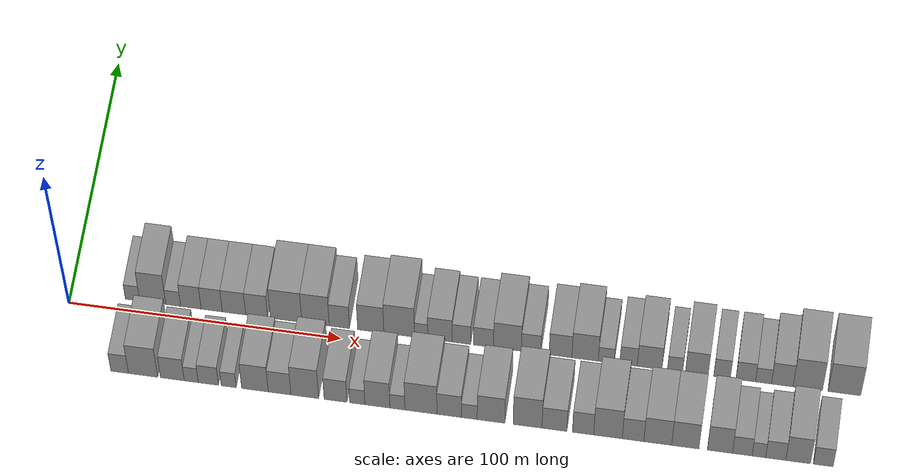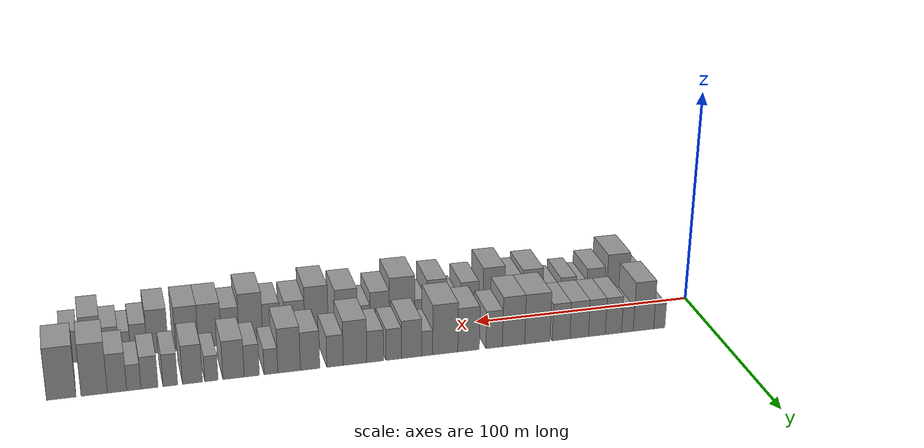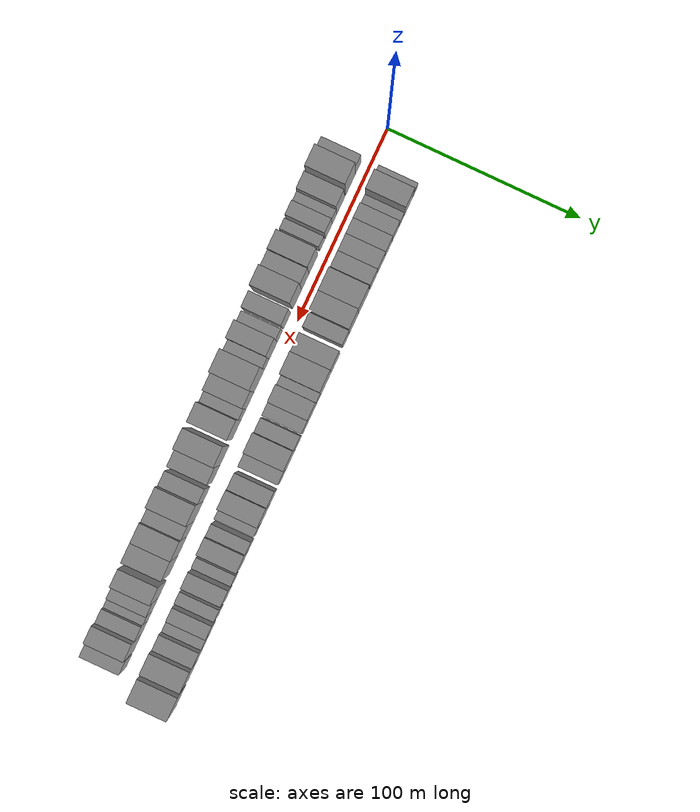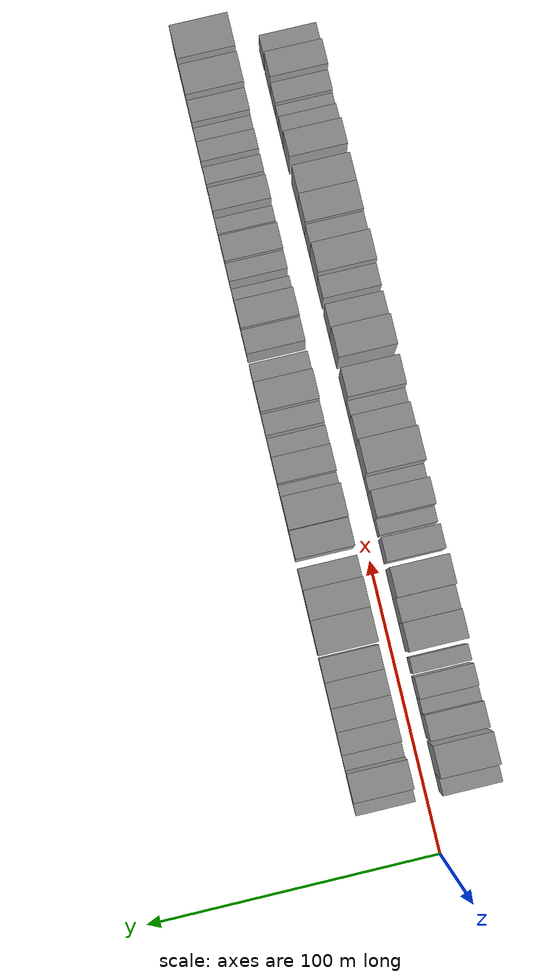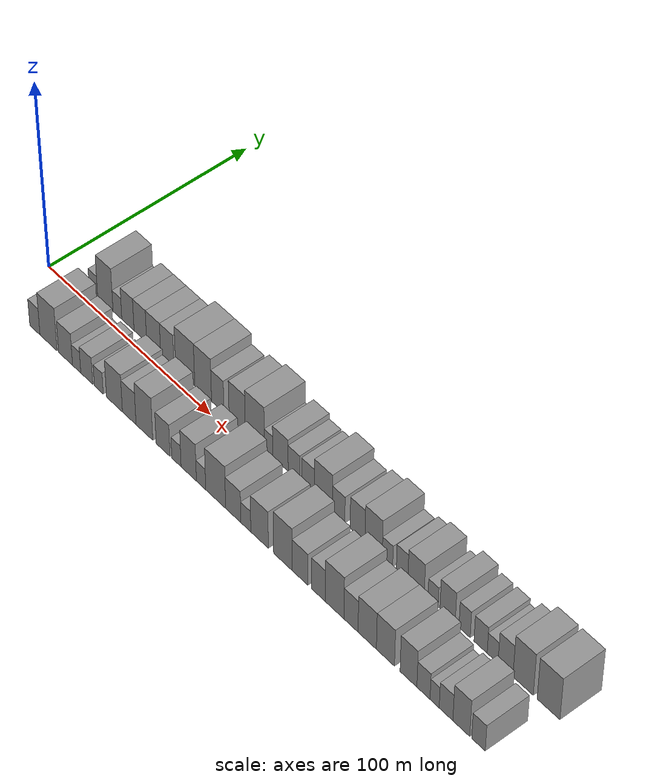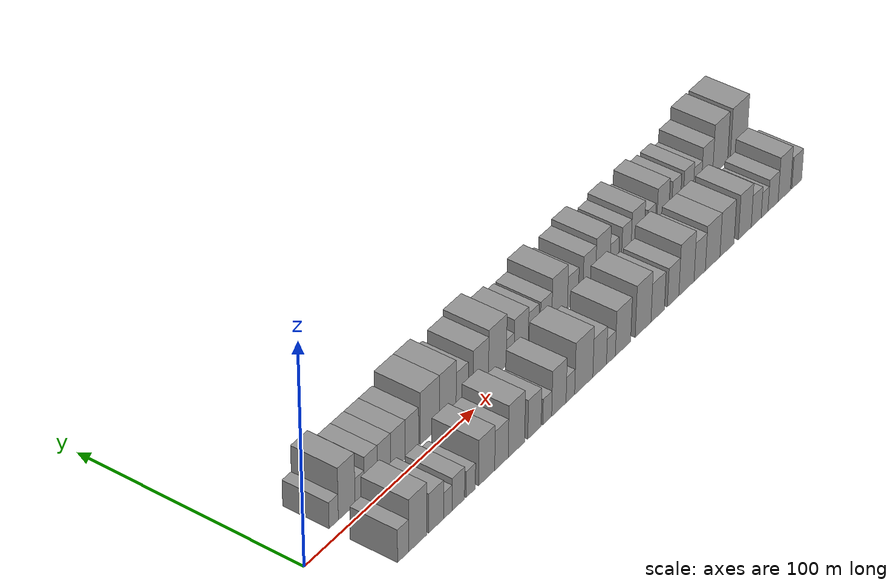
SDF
<sdf version="1.6">
 <world name="default">
  <scene>
   <sky><clouds><speed>12</speed></clouds></sky>
   <ambient>0.4 0.4 0.4 1</ambient>
   <background>0.7 0.7 0.7 1</background>
   <shadows>1</shadows>
  </scene>
  <gravity>0 0 -9.8066</gravity>
  <magnetic_field>6e-06 2.3e-05 -4.2e-05</magnetic_field>
  <physics default="0" name="default_physics" type="ode">
   <ode>
    <solver>
     <type>quick</type>
     <iters>10</iters>
     <sor>1.0</sor>
     <use_dynamic_moi_rescaling>0</use_dynamic_moi_rescaling>
    </solver>
    <constraints>
     <cfm>0</cfm>
     <erp>0.2</erp>
     <contact_max_correcting_vel>100</contact_max_correcting_vel>
     <contact_surface_layer>0.001</contact_surface_layer>
    </constraints>
   </ode>
   <max_step_size>0.004</max_step_size>
   <real_time_factor>1</real_time_factor>
   <real_time_update_rate>250</real_time_update_rate>
  </physics>
  <light name="sun" type="directional">
   <pose>0 0 10 0 0 0</pose>
   <diffuse>0.8 0.8 0.8 1</diffuse>
   <specular>0.2 0.2 0.2 1</specular>
   <attenuation>
    <range>1000</range>
    <constant>0.9</constant>
    <linear>0.01</linear>
    <quadratic>0.001</quadratic>
   </attenuation>
   <direction>-0.5 0.1 -0.9</direction>
  </light>
  <model name="building_1">
   <static>1</static>
   <pose>22.6397 14.5000 0 0.000000 0.000000 1.570796</pose>
   <link name="link">
    <pose>0 0 6.00 0 0 0</pose>
    <collision name="collision"><geometry><box><size>20.0000 5.2793 12.0000</size></box></geometry></collision>
    <visual name="visual">
     <cast_shadows>0</cast_shadows>
     <geometry><box><size>20.0000 5.2793 12.0000</size></box></geometry>
     <material>
      <script>
       <uri>model://grey_wall/materials/scripts</uri>
       <uri>model://grey_wall/materials/textures</uri>
       <name>vrc/grey_wall</name>
      </script>
     </material>
    </visual>
   </link>
  </model>
  <model name="building_2">
   <static>1</static>
   <pose>30.0902 14.5000 0 0.000000 0.000000 1.570796</pose>
   <link name="link">
    <pose>0 0 12.00 0 0 0</pose>
    <collision name="collision"><geometry><box><size>20.0000 9.6217 24.0000</size></box></geometry></collision>
    <visual name="visual">
     <cast_shadows>0</cast_shadows>
     <geometry><box><size>20.0000 9.6217 24.0000</size></box></geometry>
     <material>
      <script>
       <uri>model://grey_wall/materials/scripts</uri>
       <uri>model://grey_wall/materials/textures</uri>
       <name>vrc/grey_wall</name>
      </script>
     </material>
    </visual>
   </link>
  </model>
  <model name="building_3">
   <static>1</static>
   <pose>37.6292 14.5000 0 0.000000 0.000000 1.570796</pose>
   <link name="link">
    <pose>0 0 6.00 0 0 0</pose>
    <collision name="collision"><geometry><box><size>20.0000 5.4562 12.0000</size></box></geometry></collision>
    <visual name="visual">
     <cast_shadows>0</cast_shadows>
     <geometry><box><size>20.0000 5.4562 12.0000</size></box></geometry>
     <material>
      <script>
       <uri>model://grey_wall/materials/scripts</uri>
       <uri>model://grey_wall/materials/textures</uri>
       <name>vrc/grey_wall</name>
      </script>
     </material>
    </visual>
   </link>
  </model>
  <model name="building_4">
   <static>1</static>
   <pose>44.1460 14.5000 0 0.000000 0.000000 1.570796</pose>
   <link name="link">
    <pose>0 0 9.00 0 0 0</pose>
    <collision name="collision"><geometry><box><size>20.0000 7.5775 18.0000</size></box></geometry></collision>
    <visual name="visual">
     <cast_shadows>0</cast_shadows>
     <geometry><box><size>20.0000 7.5775 18.0000</size></box></geometry>
     <material>
      <script>
       <uri>model://grey_wall/materials/scripts</uri>
       <uri>model://grey_wall/materials/textures</uri>
       <name>vrc/grey_wall</name>
      </script>
     </material>
    </visual>
   </link>
  </model>
  <model name="building_5">
   <static>1</static>
   <pose>51.8252 14.5000 0 0.000000 0.000000 1.570796</pose>
   <link name="link">
    <pose>0 0 9.00 0 0 0</pose>
    <collision name="collision"><geometry><box><size>20.0000 7.7807 18.0000</size></box></geometry></collision>
    <visual name="visual">
     <cast_shadows>0</cast_shadows>
     <geometry><box><size>20.0000 7.7807 18.0000</size></box></geometry>
     <material>
      <script>
       <uri>model://grey_wall/materials/scripts</uri>
       <uri>model://grey_wall/materials/textures</uri>
       <name>vrc/grey_wall</name>
      </script>
     </material>
    </visual>
   </link>
  </model>
  <model name="building_6">
   <static>1</static>
   <pose>60.0201 14.5000 0 0.000000 0.000000 1.570796</pose>
   <link name="link">
    <pose>0 0 9.00 0 0 0</pose>
    <collision name="collision"><geometry><box><size>20.0000 8.6092 18.0000</size></box></geometry></collision>
    <visual name="visual">
     <cast_shadows>0</cast_shadows>
     <geometry><box><size>20.0000 8.6092 18.0000</size></box></geometry>
     <material>
      <script>
       <uri>model://grey_wall/materials/scripts</uri>
       <uri>model://grey_wall/materials/textures</uri>
       <name>vrc/grey_wall</name>
      </script>
     </material>
    </visual>
   </link>
  </model>
  <model name="building_7">
   <static>1</static>
   <pose>68.3715 14.5000 0 0.000000 0.000000 1.570796</pose>
   <link name="link">
    <pose>0 0 9.00 0 0 0</pose>
    <collision name="collision"><geometry><box><size>20.0000 8.0935 18.0000</size></box></geometry></collision>
    <visual name="visual">
     <cast_shadows>0</cast_shadows>
     <geometry><box><size>20.0000 8.0935 18.0000</size></box></geometry>
     <material>
      <script>
       <uri>model://grey_wall/materials/scripts</uri>
       <uri>model://grey_wall/materials/textures</uri>
       <name>vrc/grey_wall</name>
      </script>
     </material>
    </visual>
   </link>
  </model>
  <model name="building_8">
   <static>1</static>
   <pose>79.1934 14.5000 0 0.000000 0.000000 1.570796</pose>
   <link name="link">
    <pose>0 0 12.00 0 0 0</pose>
    <collision name="collision"><geometry><box><size>20.0000 11.5504 24.0000</size></box></geometry></collision>
    <visual name="visual">
     <cast_shadows>0</cast_shadows>
     <geometry><box><size>20.0000 11.5504 24.0000</size></box></geometry>
     <material>
      <script>
       <uri>model://grey_wall/materials/scripts</uri>
       <uri>model://grey_wall/materials/textures</uri>
       <name>vrc/grey_wall</name>
      </script>
     </material>
    </visual>
   </link>
  </model>
  <model name="building_9">
   <static>1</static>
   <pose>90.0031 14.5000 0 0.000000 0.000000 1.570796</pose>
   <link name="link">
    <pose>0 0 12.00 0 0 0</pose>
    <collision name="collision"><geometry><box><size>20.0000 10.0690 24.0000</size></box></geometry></collision>
    <visual name="visual">
     <cast_shadows>0</cast_shadows>
     <geometry><box><size>20.0000 10.0690 24.0000</size></box></geometry>
     <material>
      <script>
       <uri>model://grey_wall/materials/scripts</uri>
       <uri>model://grey_wall/materials/textures</uri>
       <name>vrc/grey_wall</name>
      </script>
     </material>
    </visual>
   </link>
  </model>
  <model name="building_10">
   <static>1</static>
   <pose>98.7398 14.5000 0 0.000000 0.000000 1.570796</pose>
   <link name="link">
    <pose>0 0 9.00 0 0 0</pose>
    <collision name="collision"><geometry><box><size>20.0000 7.4045 18.0000</size></box></geometry></collision>
    <visual name="visual">
     <cast_shadows>0</cast_shadows>
     <geometry><box><size>20.0000 7.4045 18.0000</size></box></geometry>
     <material>
      <script>
       <uri>model://grey_wall/materials/scripts</uri>
       <uri>model://grey_wall/materials/textures</uri>
       <name>vrc/grey_wall</name>
      </script>
     </material>
    </visual>
   </link>
  </model>
  <model name="building_11">
   <static>1</static>
   <pose>110.2371 14.5000 0 0.000000 0.000000 1.570796</pose>
   <link name="link">
    <pose>0 0 10.50 0 0 0</pose>
    <collision name="collision"><geometry><box><size>20.0000 9.5901 21.0000</size></box></geometry></collision>
    <visual name="visual">
     <cast_shadows>0</cast_shadows>
     <geometry><box><size>20.0000 9.5901 21.0000</size></box></geometry>
     <material>
      <script>
       <uri>model://grey_wall/materials/scripts</uri>
       <uri>model://grey_wall/materials/textures</uri>
       <name>vrc/grey_wall</name>
      </script>
     </material>
    </visual>
   </link>
  </model>
  <model name="building_12">
   <static>1</static>
   <pose>120.6407 14.5000 0 0.000000 0.000000 1.570796</pose>
   <link name="link">
    <pose>0 0 12.00 0 0 0</pose>
    <collision name="collision"><geometry><box><size>20.0000 11.2171 24.0000</size></box></geometry></collision>
    <visual name="visual">
     <cast_shadows>0</cast_shadows>
     <geometry><box><size>20.0000 11.2171 24.0000</size></box></geometry>
     <material>
      <script>
       <uri>model://grey_wall/materials/scripts</uri>
       <uri>model://grey_wall/materials/textures</uri>
       <name>vrc/grey_wall</name>
      </script>
     </material>
    </visual>
   </link>
  </model>
  <model name="building_13">
   <static>1</static>
   <pose>128.6591 14.5000 0 0.000000 0.000000 1.570796</pose>
   <link name="link">
    <pose>0 0 6.00 0 0 0</pose>
    <collision name="collision"><geometry><box><size>20.0000 4.8196 12.0000</size></box></geometry></collision>
    <visual name="visual">
     <cast_shadows>0</cast_shadows>
     <geometry><box><size>20.0000 4.8196 12.0000</size></box></geometry>
     <material>
      <script>
       <uri>model://grey_wall/materials/scripts</uri>
       <uri>model://grey_wall/materials/textures</uri>
       <name>vrc/grey_wall</name>
      </script>
     </material>
    </visual>
   </link>
  </model>
  <model name="building_14">
   <static>1</static>
   <pose>135.5658 14.5000 0 0.000000 0.000000 1.570796</pose>
   <link name="link">
    <pose>0 0 9.00 0 0 0</pose>
    <collision name="collision"><geometry><box><size>20.0000 8.9939 18.0000</size></box></geometry></collision>
    <visual name="visual">
     <cast_shadows>0</cast_shadows>
     <geometry><box><size>20.0000 8.9939 18.0000</size></box></geometry>
     <material>
      <script>
       <uri>model://grey_wall/materials/scripts</uri>
       <uri>model://grey_wall/materials/textures</uri>
       <name>vrc/grey_wall</name>
      </script>
     </material>
    </visual>
   </link>
  </model>
  <model name="building_15">
   <static>1</static>
   <pose>143.4228 14.5000 0 0.000000 0.000000 1.570796</pose>
   <link name="link">
    <pose>0 0 7.50 0 0 0</pose>
    <collision name="collision"><geometry><box><size>20.0000 6.7200 15.0000</size></box></geometry></collision>
    <visual name="visual">
     <cast_shadows>0</cast_shadows>
     <geometry><box><size>20.0000 6.7200 15.0000</size></box></geometry>
     <material>
      <script>
       <uri>model://grey_wall/materials/scripts</uri>
       <uri>model://grey_wall/materials/textures</uri>
       <name>vrc/grey_wall</name>
      </script>
     </material>
    </visual>
   </link>
  </model>
  <model name="building_16">
   <static>1</static>
   <pose>151.4586 14.5000 0 0.000000 0.000000 1.570796</pose>
   <link name="link">
    <pose>0 0 7.50 0 0 0</pose>
    <collision name="collision"><geometry><box><size>20.0000 7.3518 15.0000</size></box></geometry></collision>
    <visual name="visual">
     <cast_shadows>0</cast_shadows>
     <geometry><box><size>20.0000 7.3518 15.0000</size></box></geometry>
     <material>
      <script>
       <uri>model://grey_wall/materials/scripts</uri>
       <uri>model://grey_wall/materials/textures</uri>
       <name>vrc/grey_wall</name>
      </script>
     </material>
    </visual>
   </link>
  </model>
  <model name="building_17">
   <static>1</static>
   <pose>160.2299 14.5000 0 0.000000 0.000000 1.570796</pose>
   <link name="link">
    <pose>0 0 10.50 0 0 0</pose>
    <collision name="collision"><geometry><box><size>20.0000 10.1907 21.0000</size></box></geometry></collision>
    <visual name="visual">
     <cast_shadows>0</cast_shadows>
     <geometry><box><size>20.0000 10.1907 21.0000</size></box></geometry>
     <material>
      <script>
       <uri>model://grey_wall/materials/scripts</uri>
       <uri>model://grey_wall/materials/textures</uri>
       <name>vrc/grey_wall</name>
      </script>
     </material>
    </visual>
   </link>
  </model>
  <model name="building_18">
   <static>1</static>
   <pose>168.8607 14.5000 0 0.000000 0.000000 1.570796</pose>
   <link name="link">
    <pose>0 0 7.50 0 0 0</pose>
    <collision name="collision"><geometry><box><size>20.0000 7.0709 15.0000</size></box></geometry></collision>
    <visual name="visual">
     <cast_shadows>0</cast_shadows>
     <geometry><box><size>20.0000 7.0709 15.0000</size></box></geometry>
     <material>
      <script>
       <uri>model://grey_wall/materials/scripts</uri>
       <uri>model://grey_wall/materials/textures</uri>
       <name>vrc/grey_wall</name>
      </script>
     </material>
    </visual>
   </link>
  </model>
  <model name="building_19">
   <static>1</static>
   <pose>179.5474 14.5000 0 0.000000 0.000000 1.570796</pose>
   <link name="link">
    <pose>0 0 9.00 0 0 0</pose>
    <collision name="collision"><geometry><box><size>20.0000 8.3025 18.0000</size></box></geometry></collision>
    <visual name="visual">
     <cast_shadows>0</cast_shadows>
     <geometry><box><size>20.0000 8.3025 18.0000</size></box></geometry>
     <material>
      <script>
       <uri>model://grey_wall/materials/scripts</uri>
       <uri>model://grey_wall/materials/textures</uri>
       <name>vrc/grey_wall</name>
      </script>
     </material>
    </visual>
   </link>
  </model>
  <model name="building_20">
   <static>1</static>
   <pose>188.5051 14.5000 0 0.000000 0.000000 1.570796</pose>
   <link name="link">
    <pose>0 0 10.50 0 0 0</pose>
    <collision name="collision"><geometry><box><size>20.0000 9.6130 21.0000</size></box></geometry></collision>
    <visual name="visual">
     <cast_shadows>0</cast_shadows>
     <geometry><box><size>20.0000 9.6130 21.0000</size></box></geometry>
     <material>
      <script>
       <uri>model://grey_wall/materials/scripts</uri>
       <uri>model://grey_wall/materials/textures</uri>
       <name>vrc/grey_wall</name>
      </script>
     </material>
    </visual>
   </link>
  </model>
  <model name="building_21">
   <static>1</static>
   <pose>196.2098 14.5000 0 0.000000 0.000000 1.570796</pose>
   <link name="link">
    <pose>0 0 6.00 0 0 0</pose>
    <collision name="collision"><geometry><box><size>20.0000 5.7962 12.0000</size></box></geometry></collision>
    <visual name="visual">
     <cast_shadows>0</cast_shadows>
     <geometry><box><size>20.0000 5.7962 12.0000</size></box></geometry>
     <material>
      <script>
       <uri>model://grey_wall/materials/scripts</uri>
       <uri>model://grey_wall/materials/textures</uri>
       <name>vrc/grey_wall</name>
      </script>
     </material>
    </visual>
   </link>
  </model>
  <model name="building_22">
   <static>1</static>
   <pose>204.2929 14.5000 0 0.000000 0.000000 1.570796</pose>
   <link name="link">
    <pose>0 0 7.50 0 0 0</pose>
    <collision name="collision"><geometry><box><size>20.0000 6.3700 15.0000</size></box></geometry></collision>
    <visual name="visual">
     <cast_shadows>0</cast_shadows>
     <geometry><box><size>20.0000 6.3700 15.0000</size></box></geometry>
     <material>
      <script>
       <uri>model://grey_wall/materials/scripts</uri>
       <uri>model://grey_wall/materials/textures</uri>
       <name>vrc/grey_wall</name>
      </script>
     </material>
    </visual>
   </link>
  </model>
  <model name="building_23">
   <static>1</static>
   <pose>211.9567 14.5000 0 0.000000 0.000000 1.570796</pose>
   <link name="link">
    <pose>0 0 9.00 0 0 0</pose>
    <collision name="collision"><geometry><box><size>20.0000 8.9577 18.0000</size></box></geometry></collision>
    <visual name="visual">
     <cast_shadows>0</cast_shadows>
     <geometry><box><size>20.0000 8.9577 18.0000</size></box></geometry>
     <material>
      <script>
       <uri>model://grey_wall/materials/scripts</uri>
       <uri>model://grey_wall/materials/textures</uri>
       <name>vrc/grey_wall</name>
      </script>
     </material>
    </visual>
   </link>
  </model>
  <model name="building_24">
   <static>1</static>
   <pose>221.1965 14.5000 0 0.000000 0.000000 1.570796</pose>
   <link name="link">
    <pose>0 0 6.00 0 0 0</pose>
    <collision name="collision"><geometry><box><size>20.0000 5.5218 12.0000</size></box></geometry></collision>
    <visual name="visual">
     <cast_shadows>0</cast_shadows>
     <geometry><box><size>20.0000 5.5218 12.0000</size></box></geometry>
     <material>
      <script>
       <uri>model://grey_wall/materials/scripts</uri>
       <uri>model://grey_wall/materials/textures</uri>
       <name>vrc/grey_wall</name>
      </script>
     </material>
    </visual>
   </link>
  </model>
  <model name="building_25">
   <static>1</static>
   <pose>229.0863 14.5000 0 0.000000 0.000000 1.570796</pose>
   <link name="link">
    <pose>0 0 9.00 0 0 0</pose>
    <collision name="collision"><geometry><box><size>20.0000 8.2580 18.0000</size></box></geometry></collision>
    <visual name="visual">
     <cast_shadows>0</cast_shadows>
     <geometry><box><size>20.0000 8.2580 18.0000</size></box></geometry>
     <material>
      <script>
       <uri>model://grey_wall/materials/scripts</uri>
       <uri>model://grey_wall/materials/textures</uri>
       <name>vrc/grey_wall</name>
      </script>
     </material>
    </visual>
   </link>
  </model>
  <model name="building_26">
   <static>1</static>
   <pose>238.2428 14.5000 0 0.000000 0.000000 1.570796</pose>
   <link name="link">
    <pose>0 0 7.50 0 0 0</pose>
    <collision name="collision"><geometry><box><size>20.0000 6.0549 15.0000</size></box></geometry></collision>
    <visual name="visual">
     <cast_shadows>0</cast_shadows>
     <geometry><box><size>20.0000 6.0549 15.0000</size></box></geometry>
     <material>
      <script>
       <uri>model://grey_wall/materials/scripts</uri>
       <uri>model://grey_wall/materials/textures</uri>
       <name>vrc/grey_wall</name>
      </script>
     </material>
    </visual>
   </link>
  </model>
  <model name="building_27">
   <static>1</static>
   <pose>246.7921 14.5000 0 0.000000 0.000000 1.570796</pose>
   <link name="link">
    <pose>0 0 7.50 0 0 0</pose>
    <collision name="collision"><geometry><box><size>20.0000 7.0436 15.0000</size></box></geometry></collision>
    <visual name="visual">
     <cast_shadows>0</cast_shadows>
     <geometry><box><size>20.0000 7.0436 15.0000</size></box></geometry>
     <material>
      <script>
       <uri>model://grey_wall/materials/scripts</uri>
       <uri>model://grey_wall/materials/textures</uri>
       <name>vrc/grey_wall</name>
      </script>
     </material>
    </visual>
   </link>
  </model>
  <model name="building_28">
   <static>1</static>
   <pose>253.1995 14.5000 0 0.000000 0.000000 1.570796</pose>
   <link name="link">
    <pose>0 0 6.00 0 0 0</pose>
    <collision name="collision"><geometry><box><size>20.0000 5.7712 12.0000</size></box></geometry></collision>
    <visual name="visual">
     <cast_shadows>0</cast_shadows>
     <geometry><box><size>20.0000 5.7712 12.0000</size></box></geometry>
     <material>
      <script>
       <uri>model://grey_wall/materials/scripts</uri>
       <uri>model://grey_wall/materials/textures</uri>
       <name>vrc/grey_wall</name>
      </script>
     </material>
    </visual>
   </link>
  </model>
  <model name="building_29">
   <static>1</static>
   <pose>260.0160 14.5000 0 0.000000 0.000000 1.570796</pose>
   <link name="link">
    <pose>0 0 9.00 0 0 0</pose>
    <collision name="collision"><geometry><box><size>20.0000 7.8619 18.0000</size></box></geometry></collision>
    <visual name="visual">
     <cast_shadows>0</cast_shadows>
     <geometry><box><size>20.0000 7.8619 18.0000</size></box></geometry>
     <material>
      <script>
       <uri>model://grey_wall/materials/scripts</uri>
       <uri>model://grey_wall/materials/textures</uri>
       <name>vrc/grey_wall</name>
      </script>
     </material>
    </visual>
   </link>
  </model>
  <model name="building_30">
   <static>1</static>
   <pose>269.2634 14.5000 0 0.000000 0.000000 1.570796</pose>
   <link name="link">
    <pose>0 0 12.00 0 0 0</pose>
    <collision name="collision"><geometry><box><size>20.0000 10.6330 24.0000</size></box></geometry></collision>
    <visual name="visual">
     <cast_shadows>0</cast_shadows>
     <geometry><box><size>20.0000 10.6330 24.0000</size></box></geometry>
     <material>
      <script>
       <uri>model://grey_wall/materials/scripts</uri>
       <uri>model://grey_wall/materials/textures</uri>
       <name>vrc/grey_wall</name>
      </script>
     </material>
    </visual>
   </link>
  </model>
  <model name="building_31">
   <static>1</static>
   <pose>282.4906 14.5000 0 0.000000 0.000000 1.570796</pose>
   <link name="link">
    <pose>0 0 12.00 0 0 0</pose>
    <collision name="collision"><geometry><box><size>20.0000 11.8214 24.0000</size></box></geometry></collision>
    <visual name="visual">
     <cast_shadows>0</cast_shadows>
     <geometry><box><size>20.0000 11.8214 24.0000</size></box></geometry>
     <material>
      <script>
       <uri>model://grey_wall/materials/scripts</uri>
       <uri>model://grey_wall/materials/textures</uri>
       <name>vrc/grey_wall</name>
      </script>
     </material>
    </visual>
   </link>
  </model>
  <model name="building_32">
   <static>1</static>
   <pose>23.2152 -14.5000 0 0.000000 0.000000 1.570796</pose>
   <link name="link">
    <pose>0 0 7.50 0 0 0</pose>
    <collision name="collision"><geometry><box><size>20.0000 6.4304 15.0000</size></box></geometry></collision>
    <visual name="visual">
     <cast_shadows>0</cast_shadows>
     <geometry><box><size>20.0000 6.4304 15.0000</size></box></geometry>
     <material>
      <script>
       <uri>model://grey_wall/materials/scripts</uri>
       <uri>model://grey_wall/materials/textures</uri>
       <name>vrc/grey_wall</name>
      </script>
     </material>
    </visual>
   </link>
  </model>
  <model name="building_33">
   <static>1</static>
   <pose>31.7823 -14.5000 0 0.000000 0.000000 1.570796</pose>
   <link name="link">
    <pose>0 0 12.00 0 0 0</pose>
    <collision name="collision"><geometry><box><size>20.0000 10.7039 24.0000</size></box></geometry></collision>
    <visual name="visual">
     <cast_shadows>0</cast_shadows>
     <geometry><box><size>20.0000 10.7039 24.0000</size></box></geometry>
     <material>
      <script>
       <uri>model://grey_wall/materials/scripts</uri>
       <uri>model://grey_wall/materials/textures</uri>
       <name>vrc/grey_wall</name>
      </script>
     </material>
    </visual>
   </link>
  </model>
  <model name="building_34">
   <static>1</static>
   <pose>42.4727 -14.5000 0 0.000000 0.000000 1.570796</pose>
   <link name="link">
    <pose>0 0 9.00 0 0 0</pose>
    <collision name="collision"><geometry><box><size>20.0000 8.6768 18.0000</size></box></geometry></collision>
    <visual name="visual">
     <cast_shadows>0</cast_shadows>
     <geometry><box><size>20.0000 8.6768 18.0000</size></box></geometry>
     <material>
      <script>
       <uri>model://grey_wall/materials/scripts</uri>
       <uri>model://grey_wall/materials/textures</uri>
       <name>vrc/grey_wall</name>
      </script>
     </material>
    </visual>
   </link>
  </model>
  <model name="building_35">
   <static>1</static>
   <pose>49.3689 -14.5000 0 0.000000 0.000000 1.570796</pose>
   <link name="link">
    <pose>0 0 6.00 0 0 0</pose>
    <collision name="collision"><geometry><box><size>20.0000 5.1156 12.0000</size></box></geometry></collision>
    <visual name="visual">
     <cast_shadows>0</cast_shadows>
     <geometry><box><size>20.0000 5.1156 12.0000</size></box></geometry>
     <material>
      <script>
       <uri>model://grey_wall/materials/scripts</uri>
       <uri>model://grey_wall/materials/textures</uri>
       <name>vrc/grey_wall</name>
      </script>
     </material>
    </visual>
   </link>
  </model>
  <model name="building_36">
   <static>1</static>
   <pose>55.6189 -14.5000 0 0.000000 0.000000 1.570796</pose>
   <link name="link">
    <pose>0 0 7.50 0 0 0</pose>
    <collision name="collision"><geometry><box><size>20.0000 7.3845 15.0000</size></box></geometry></collision>
    <visual name="visual">
     <cast_shadows>0</cast_shadows>
     <geometry><box><size>20.0000 7.3845 15.0000</size></box></geometry>
     <material>
      <script>
       <uri>model://grey_wall/materials/scripts</uri>
       <uri>model://grey_wall/materials/textures</uri>
       <name>vrc/grey_wall</name>
      </script>
     </material>
    </visual>
   </link>
  </model>
  <model name="building_37">
   <static>1</static>
   <pose>63.0407 -14.5000 0 0.000000 0.000000 1.570796</pose>
   <link name="link">
    <pose>0 0 6.00 0 0 0</pose>
    <collision name="collision"><geometry><box><size>20.0000 5.4591 12.0000</size></box></geometry></collision>
    <visual name="visual">
     <cast_shadows>0</cast_shadows>
     <geometry><box><size>20.0000 5.4591 12.0000</size></box></geometry>
     <material>
      <script>
       <uri>model://grey_wall/materials/scripts</uri>
       <uri>model://grey_wall/materials/textures</uri>
       <name>vrc/grey_wall</name>
      </script>
     </material>
    </visual>
   </link>
  </model>
  <model name="building_38">
   <static>1</static>
   <pose>72.6172 -14.5000 0 0.000000 0.000000 1.570796</pose>
   <link name="link">
    <pose>0 0 10.50 0 0 0</pose>
    <collision name="collision"><geometry><box><size>20.0000 9.6937 21.0000</size></box></geometry></collision>
    <visual name="visual">
     <cast_shadows>0</cast_shadows>
     <geometry><box><size>20.0000 9.6937 21.0000</size></box></geometry>
     <material>
      <script>
       <uri>model://grey_wall/materials/scripts</uri>
       <uri>model://grey_wall/materials/textures</uri>
       <name>vrc/grey_wall</name>
      </script>
     </material>
    </visual>
   </link>
  </model>
  <model name="building_39">
   <static>1</static>
   <pose>81.5902 -14.5000 0 0.000000 0.000000 1.570796</pose>
   <link name="link">
    <pose>0 0 9.00 0 0 0</pose>
    <collision name="collision"><geometry><box><size>20.0000 8.2524 18.0000</size></box></geometry></collision>
    <visual name="visual">
     <cast_shadows>0</cast_shadows>
     <geometry><box><size>20.0000 8.2524 18.0000</size></box></geometry>
     <material>
      <script>
       <uri>model://grey_wall/materials/scripts</uri>
       <uri>model://grey_wall/materials/textures</uri>
       <name>vrc/grey_wall</name>
      </script>
     </material>
    </visual>
   </link>
  </model>
  <model name="building_40">
   <static>1</static>
   <pose>90.7587 -14.5000 0 0.000000 0.000000 1.570796</pose>
   <link name="link">
    <pose>0 0 12.00 0 0 0</pose>
    <collision name="collision"><geometry><box><size>20.0000 10.0846 24.0000</size></box></geometry></collision>
    <visual name="visual">
     <cast_shadows>0</cast_shadows>
     <geometry><box><size>20.0000 10.0846 24.0000</size></box></geometry>
     <material>
      <script>
       <uri>model://grey_wall/materials/scripts</uri>
       <uri>model://grey_wall/materials/textures</uri>
       <name>vrc/grey_wall</name>
      </script>
     </material>
    </visual>
   </link>
  </model>
  <model name="building_41">
   <static>1</static>
   <pose>101.9436 -14.5000 0 0.000000 0.000000 1.570796</pose>
   <link name="link">
    <pose>0 0 9.00 0 0 0</pose>
    <collision name="collision"><geometry><box><size>20.0000 8.2850 18.0000</size></box></geometry></collision>
    <visual name="visual">
     <cast_shadows>0</cast_shadows>
     <geometry><box><size>20.0000 8.2850 18.0000</size></box></geometry>
     <material>
      <script>
       <uri>model://grey_wall/materials/scripts</uri>
       <uri>model://grey_wall/materials/textures</uri>
       <name>vrc/grey_wall</name>
      </script>
     </material>
    </visual>
   </link>
  </model>
  <model name="building_42">
   <static>1</static>
   <pose>109.8608 -14.5000 0 0.000000 0.000000 1.570796</pose>
   <link name="link">
    <pose>0 0 6.00 0 0 0</pose>
    <collision name="collision"><geometry><box><size>20.0000 5.5495 12.0000</size></box></geometry></collision>
    <visual name="visual">
     <cast_shadows>0</cast_shadows>
     <geometry><box><size>20.0000 5.5495 12.0000</size></box></geometry>
     <material>
      <script>
       <uri>model://grey_wall/materials/scripts</uri>
       <uri>model://grey_wall/materials/textures</uri>
       <name>vrc/grey_wall</name>
      </script>
     </material>
    </visual>
   </link>
  </model>
  <model name="building_43">
   <static>1</static>
   <pose>117.1668 -14.5000 0 0.000000 0.000000 1.570796</pose>
   <link name="link">
    <pose>0 0 10.50 0 0 0</pose>
    <collision name="collision"><geometry><box><size>20.0000 9.0625 21.0000</size></box></geometry></collision>
    <visual name="visual">
     <cast_shadows>0</cast_shadows>
     <geometry><box><size>20.0000 9.0625 21.0000</size></box></geometry>
     <material>
      <script>
       <uri>model://grey_wall/materials/scripts</uri>
       <uri>model://grey_wall/materials/textures</uri>
       <name>vrc/grey_wall</name>
      </script>
     </material>
    </visual>
   </link>
  </model>
  <model name="building_44">
   <static>1</static>
   <pose>124.4213 -14.5000 0 0.000000 0.000000 1.570796</pose>
   <link name="link">
    <pose>0 0 6.00 0 0 0</pose>
    <collision name="collision"><geometry><box><size>20.0000 5.4465 12.0000</size></box></geometry></collision>
    <visual name="visual">
     <cast_shadows>0</cast_shadows>
     <geometry><box><size>20.0000 5.4465 12.0000</size></box></geometry>
     <material>
      <script>
       <uri>model://grey_wall/materials/scripts</uri>
       <uri>model://grey_wall/materials/textures</uri>
       <name>vrc/grey_wall</name>
      </script>
     </material>
    </visual>
   </link>
  </model>
  <model name="building_45">
   <static>1</static>
   <pose>132.9567 -14.5000 0 0.000000 0.000000 1.570796</pose>
   <link name="link">
    <pose>0 0 12.00 0 0 0</pose>
    <collision name="collision"><geometry><box><size>20.0000 11.6243 24.0000</size></box></geometry></collision>
    <visual name="visual">
     <cast_shadows>0</cast_shadows>
     <geometry><box><size>20.0000 11.6243 24.0000</size></box></geometry>
     <material>
      <script>
       <uri>model://grey_wall/materials/scripts</uri>
       <uri>model://grey_wall/materials/textures</uri>
       <name>vrc/grey_wall</name>
      </script>
     </material>
    </visual>
   </link>
  </model>
  <model name="building_46">
   <static>1</static>
   <pose>143.1691 -14.5000 0 0.000000 0.000000 1.570796</pose>
   <link name="link">
    <pose>0 0 9.00 0 0 0</pose>
    <collision name="collision"><geometry><box><size>20.0000 8.8006 18.0000</size></box></geometry></collision>
    <visual name="visual">
     <cast_shadows>0</cast_shadows>
     <geometry><box><size>20.0000 8.8006 18.0000</size></box></geometry>
     <material>
      <script>
       <uri>model://grey_wall/materials/scripts</uri>
       <uri>model://grey_wall/materials/textures</uri>
       <name>vrc/grey_wall</name>
      </script>
     </material>
    </visual>
   </link>
  </model>
  <model name="building_47">
   <static>1</static>
   <pose>150.4358 -14.5000 0 0.000000 0.000000 1.570796</pose>
   <link name="link">
    <pose>0 0 6.00 0 0 0</pose>
    <collision name="collision"><geometry><box><size>20.0000 5.7327 12.0000</size></box></geometry></collision>
    <visual name="visual">
     <cast_shadows>0</cast_shadows>
     <geometry><box><size>20.0000 5.7327 12.0000</size></box></geometry>
     <material>
      <script>
       <uri>model://grey_wall/materials/scripts</uri>
       <uri>model://grey_wall/materials/textures</uri>
       <name>vrc/grey_wall</name>
      </script>
     </material>
    </visual>
   </link>
  </model>
  <model name="building_48">
   <static>1</static>
   <pose>158.3227 -14.5000 0 0.000000 0.000000 1.570796</pose>
   <link name="link">
    <pose>0 0 10.50 0 0 0</pose>
    <collision name="collision"><geometry><box><size>20.0000 10.0410 21.0000</size></box></geometry></collision>
    <visual name="visual">
     <cast_shadows>0</cast_shadows>
     <geometry><box><size>20.0000 10.0410 21.0000</size></box></geometry>
     <material>
      <script>
       <uri>model://grey_wall/materials/scripts</uri>
       <uri>model://grey_wall/materials/textures</uri>
       <name>vrc/grey_wall</name>
      </script>
     </material>
    </visual>
   </link>
  </model>
  <model name="building_49">
   <static>1</static>
   <pose>171.5510 -14.5000 0 0.000000 0.000000 1.570796</pose>
   <link name="link">
    <pose>0 0 12.00 0 0 0</pose>
    <collision name="collision"><geometry><box><size>20.0000 10.4157 24.0000</size></box></geometry></collision>
    <visual name="visual">
     <cast_shadows>0</cast_shadows>
     <geometry><box><size>20.0000 10.4157 24.0000</size></box></geometry>
     <material>
      <script>
       <uri>model://grey_wall/materials/scripts</uri>
       <uri>model://grey_wall/materials/textures</uri>
       <name>vrc/grey_wall</name>
      </script>
     </material>
    </visual>
   </link>
  </model>
  <model name="building_50">
   <static>1</static>
   <pose>181.2449 -14.5000 0 0.000000 0.000000 1.570796</pose>
   <link name="link">
    <pose>0 0 9.00 0 0 0</pose>
    <collision name="collision"><geometry><box><size>20.0000 8.9720 18.0000</size></box></geometry></collision>
    <visual name="visual">
     <cast_shadows>0</cast_shadows>
     <geometry><box><size>20.0000 8.9720 18.0000</size></box></geometry>
     <material>
      <script>
       <uri>model://grey_wall/materials/scripts</uri>
       <uri>model://grey_wall/materials/textures</uri>
       <name>vrc/grey_wall</name>
      </script>
     </material>
    </visual>
   </link>
  </model>
  <model name="building_51">
   <static>1</static>
   <pose>191.5676 -14.5000 0 0.000000 0.000000 1.570796</pose>
   <link name="link">
    <pose>0 0 9.00 0 0 0</pose>
    <collision name="collision"><geometry><box><size>20.0000 7.6734 18.0000</size></box></geometry></collision>
    <visual name="visual">
     <cast_shadows>0</cast_shadows>
     <geometry><box><size>20.0000 7.6734 18.0000</size></box></geometry>
     <material>
      <script>
       <uri>model://grey_wall/materials/scripts</uri>
       <uri>model://grey_wall/materials/textures</uri>
       <name>vrc/grey_wall</name>
      </script>
     </material>
    </visual>
   </link>
  </model>
  <model name="building_52">
   <static>1</static>
   <pose>200.5616 -14.5000 0 0.000000 0.000000 1.570796</pose>
   <link name="link">
    <pose>0 0 12.00 0 0 0</pose>
    <collision name="collision"><geometry><box><size>20.0000 10.3144 24.0000</size></box></geometry></collision>
    <visual name="visual">
     <cast_shadows>0</cast_shadows>
     <geometry><box><size>20.0000 10.3144 24.0000</size></box></geometry>
     <material>
      <script>
       <uri>model://grey_wall/materials/scripts</uri>
       <uri>model://grey_wall/materials/textures</uri>
       <name>vrc/grey_wall</name>
      </script>
     </material>
    </visual>
   </link>
  </model>
  <model name="building_53">
   <static>1</static>
   <pose>209.6001 -14.5000 0 0.000000 0.000000 1.570796</pose>
   <link name="link">
    <pose>0 0 9.00 0 0 0</pose>
    <collision name="collision"><geometry><box><size>20.0000 7.7626 18.0000</size></box></geometry></collision>
    <visual name="visual">
     <cast_shadows>0</cast_shadows>
     <geometry><box><size>20.0000 7.7626 18.0000</size></box></geometry>
     <material>
      <script>
       <uri>model://grey_wall/materials/scripts</uri>
       <uri>model://grey_wall/materials/textures</uri>
       <name>vrc/grey_wall</name>
      </script>
     </material>
    </visual>
   </link>
  </model>
  <model name="building_54">
   <static>1</static>
   <pose>218.4899 -14.5000 0 0.000000 0.000000 1.570796</pose>
   <link name="link">
    <pose>0 0 10.50 0 0 0</pose>
    <collision name="collision"><geometry><box><size>20.0000 10.0170 21.0000</size></box></geometry></collision>
    <visual name="visual">
     <cast_shadows>0</cast_shadows>
     <geometry><box><size>20.0000 10.0170 21.0000</size></box></geometry>
     <material>
      <script>
       <uri>model://grey_wall/materials/scripts</uri>
       <uri>model://grey_wall/materials/textures</uri>
       <name>vrc/grey_wall</name>
      </script>
     </material>
    </visual>
   </link>
  </model>
  <model name="building_55">
   <static>1</static>
   <pose>228.4119 -14.5000 0 0.000000 0.000000 1.570796</pose>
   <link name="link">
    <pose>0 0 10.50 0 0 0</pose>
    <collision name="collision"><geometry><box><size>20.0000 9.8272 21.0000</size></box></geometry></collision>
    <visual name="visual">
     <cast_shadows>0</cast_shadows>
     <geometry><box><size>20.0000 9.8272 21.0000</size></box></geometry>
     <material>
      <script>
       <uri>model://grey_wall/materials/scripts</uri>
       <uri>model://grey_wall/materials/textures</uri>
       <name>vrc/grey_wall</name>
      </script>
     </material>
    </visual>
   </link>
  </model>
  <model name="building_56">
   <static>1</static>
   <pose>240.8388 -14.5000 0 0.000000 0.000000 1.570796</pose>
   <link name="link">
    <pose>0 0 10.50 0 0 0</pose>
    <collision name="collision"><geometry><box><size>20.0000 9.0266 21.0000</size></box></geometry></collision>
    <visual name="visual">
     <cast_shadows>0</cast_shadows>
     <geometry><box><size>20.0000 9.0266 21.0000</size></box></geometry>
     <material>
      <script>
       <uri>model://grey_wall/materials/scripts</uri>
       <uri>model://grey_wall/materials/textures</uri>
       <name>vrc/grey_wall</name>
      </script>
     </material>
    </visual>
   </link>
  </model>
  <model name="building_57">
   <static>1</static>
   <pose>248.8666 -14.5000 0 0.000000 0.000000 1.570796</pose>
   <link name="link">
    <pose>0 0 7.50 0 0 0</pose>
    <collision name="collision"><geometry><box><size>20.0000 7.0290 15.0000</size></box></geometry></collision>
    <visual name="visual">
     <cast_shadows>0</cast_shadows>
     <geometry><box><size>20.0000 7.0290 15.0000</size></box></geometry>
     <material>
      <script>
       <uri>model://grey_wall/materials/scripts</uri>
       <uri>model://grey_wall/materials/textures</uri>
       <name>vrc/grey_wall</name>
      </script>
     </material>
    </visual>
   </link>
  </model>
  <model name="building_58">
   <static>1</static>
   <pose>254.8053 -14.5000 0 0.000000 0.000000 1.570796</pose>
   <link name="link">
    <pose>0 0 6.00 0 0 0</pose>
    <collision name="collision"><geometry><box><size>20.0000 4.8484 12.0000</size></box></geometry></collision>
    <visual name="visual">
     <cast_shadows>0</cast_shadows>
     <geometry><box><size>20.0000 4.8484 12.0000</size></box></geometry>
     <material>
      <script>
       <uri>model://grey_wall/materials/scripts</uri>
       <uri>model://grey_wall/materials/textures</uri>
       <name>vrc/grey_wall</name>
      </script>
     </material>
    </visual>
   </link>
  </model>
  <model name="building_59">
   <static>1</static>
   <pose>260.8475 -14.5000 0 0.000000 0.000000 1.570796</pose>
   <link name="link">
    <pose>0 0 7.50 0 0 0</pose>
    <collision name="collision"><geometry><box><size>20.0000 7.2360 15.0000</size></box></geometry></collision>
    <visual name="visual">
     <cast_shadows>0</cast_shadows>
     <geometry><box><size>20.0000 7.2360 15.0000</size></box></geometry>
     <material>
      <script>
       <uri>model://grey_wall/materials/scripts</uri>
       <uri>model://grey_wall/materials/textures</uri>
       <name>vrc/grey_wall</name>
      </script>
     </material>
    </visual>
   </link>
  </model>
  <model name="building_60">
   <static>1</static>
   <pose>268.9087 -14.5000 0 0.000000 0.000000 1.570796</pose>
   <link name="link">
    <pose>0 0 10.50 0 0 0</pose>
    <collision name="collision"><geometry><box><size>20.0000 8.8864 21.0000</size></box></geometry></collision>
    <visual name="visual">
     <cast_shadows>0</cast_shadows>
     <geometry><box><size>20.0000 8.8864 21.0000</size></box></geometry>
     <material>
      <script>
       <uri>model://grey_wall/materials/scripts</uri>
       <uri>model://grey_wall/materials/textures</uri>
       <name>vrc/grey_wall</name>
      </script>
     </material>
    </visual>
   </link>
  </model>
  <model name="building_61">
   <static>1</static>
   <pose>277.8998 -14.5000 0 0.000000 0.000000 1.570796</pose>
   <link name="link">
    <pose>0 0 7.50 0 0 0</pose>
    <collision name="collision"><geometry><box><size>20.0000 7.0959 15.0000</size></box></geometry></collision>
    <visual name="visual">
     <cast_shadows>0</cast_shadows>
     <geometry><box><size>20.0000 7.0959 15.0000</size></box></geometry>
     <material>
      <script>
       <uri>model://grey_wall/materials/scripts</uri>
       <uri>model://grey_wall/materials/textures</uri>
       <name>vrc/grey_wall</name>
      </script>
     </material>
    </visual>
   </link>
  </model>
 </world>
</sdf>
